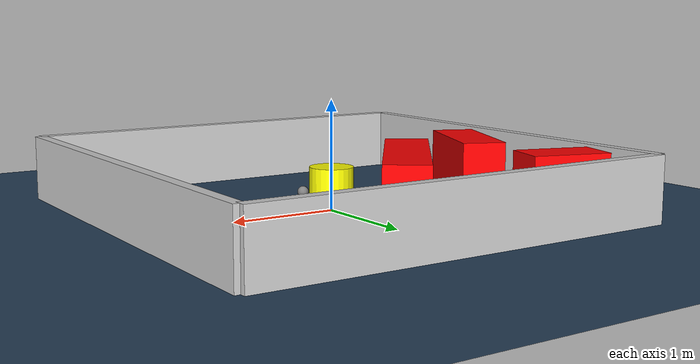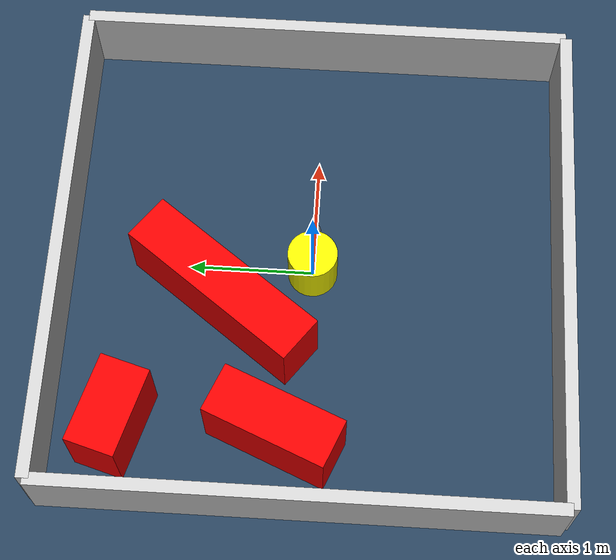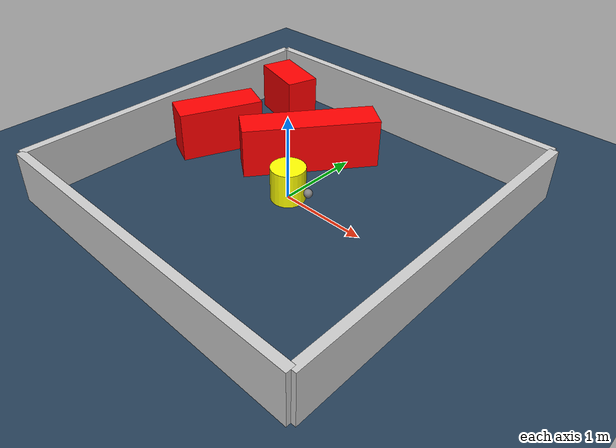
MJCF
<?xml version="1.0" ?>
<mujoco model="generated_environment">
  <option timestep="0.01" integrator="RK4" cone="elliptic"/>
  <default>
    <geom density="1"/>
  </default>
  <asset>
    <texture builtin="gradient" height="3072" rgb1="0.3 0.5 0.7" rgb2="0 0 0" type="skybox" width="512"/>
    <texture builtin="checker" height="300" mark="edge" markrgb="0.8 0.8 0.8" name="groundplane" rgb1="0.2 0.3 0.4" rgb2="0.1 0.2 0.3" type="2d" width="300"/>
    <material name="groundplane" reflectance="0.2" texrepeat="5 5" texture="groundplane" texuniform="true"/>
    <material name="robot" rgba="0.0 1.0 0.0 1"/>
  </asset>
  <worldbody>
    <light dir="0 0 -1" directional="true" pos="0 0 1.5"/>
    <geom condim="4" friction="1.0 0.005 0.001" material="groundplane" name="floor" size="0 0 0.05" type="plane"/>
    <body name="walls">
      <geom name="wall_1" condim="4" pos="-2.0 0.0 0.3" rgba="0.800000011920929 0.800000011920929 0.800000011920929 1.0" size="0.05 2.0 0.3" type="box"/>
      <geom name="wall_2" condim="4" pos="2.0 0.0 0.3" rgba="0.800000011920929 0.800000011920929 0.800000011920929 1.0" size="0.05 2.0 0.3" type="box"/>
      <geom name="wall_3" condim="4" pos="0.0 -2.0 0.3" rgba="0.800000011920929 0.800000011920929 0.800000011920929 1.0" size="2.0 0.05 0.3" type="box"/>
      <geom name="wall_4" condim="4" pos="0.0 2.0 0.3" rgba="0.800000011920929 0.800000011920929 0.800000011920929 1.0" size="2.0 0.05 0.3" type="box"/>
    </body>
    <body name="robot">
      <joint name="joint_x" type="slide" pos="0 0 0" axis="1 0 0"/>
      <joint name="joint_y" type="slide" pos="0 0 0" axis="0 1 0"/>
      <geom name="robot" type="sphere" pos="0.3 0.0 0.2" size="0.05" mass="5." friction="1.0 0.005 0.0001" condim="4" rgba="0.5 0.5 0.5 1.0"/>
      <site name="sensor_ball"/>
    </body>
    <body name="obstacle_movable_1">
      <geom name="obstacle_movable_1" condim="4" pos="0.0 0.0 0.2" euler="0 0 0.0" friction="1.0 0.005 0.001" rgba="1.0 1.0 0.0 1.0" size="0.2 0.2 0.0" type="cylinder" mass="0.1"/>
      <joint type="free"/>
    </body>
    <body name="obstacle_2_static">
      <geom name="obstacle_2_static" condim="4" pos="-0.32837240451246774 0.6842862098986682 0.3" euler="0 0 233.1126700758991" friction="1.0 0.005 0.001" rgba="1 0 0 1" size="0.8030759454966852 0.2 0.3" type="box"/>
    </body>
    <body name="obstacle_3_static">
      <geom name="obstacle_3_static" condim="4" pos="-1.4059885809259303 1.448628754545705 0.3" euler="0 0 163.68087220305227" friction="1.0 0.005 0.001" rgba="1 0 0 1" size="0.3570579496273492 0.2 0.3" type="box"/>
    </body>
    <body name="obstacle_4_static">
      <geom name="obstacle_4_static" condim="4" pos="-1.4163630099928952 0.20711310125537152 0.3" euler="0 0 247.0839201073168" friction="1.0 0.005 0.001" rgba="1 0 0 1" size="0.5069775907348115 0.2 0.3" type="box"/>
    </body>
  </worldbody>
  <actuator>
    <motor name="actuator_x" joint="joint_x" gear="1" ctrlrange="-1 1"/>
    <motor name="actuator_y" joint="joint_y" gear="1" ctrlrange="-1 1"/>
  </actuator>
</mujoco>
